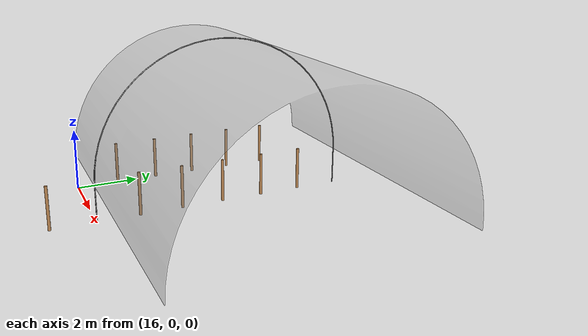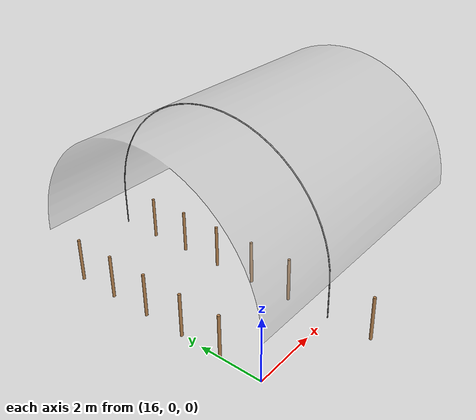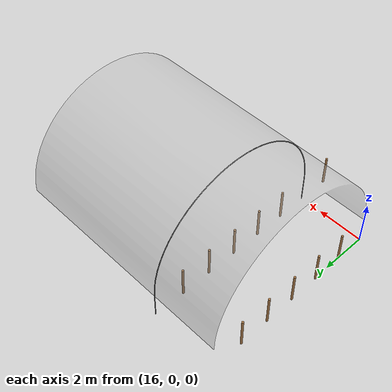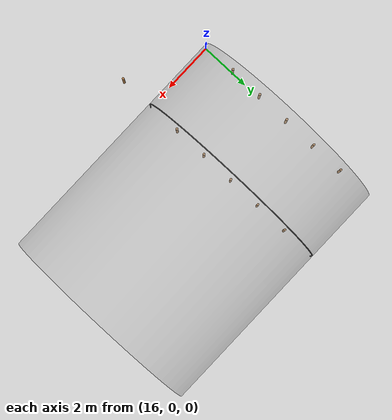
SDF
<sdf version="1.4">
 <world name="default">
  <model name="pole_24">
   <static>1</static>
   <pose>19.000 -1.350 0.691 0.0 0.0 0.0</pose>
   <link name="link">
    <collision name="collision">
     <geometry><cylinder><length>1.38235</length><radius>0.0456111</radius></cylinder></geometry>
    </collision>
    <visual name="visual">
     <geometry><cylinder><length>1.38235</length><radius>0.0456111</radius></cylinder></geometry>
     <material>
      <script><uri>file://media/materials/scripts/gazebo.material</uri><name>Gazebo/WoodFloor</name></script>
      <shader type="vertex"><normal_map>__default__</normal_map></shader>
      <emissive>0 0 0 1</emissive>
      <specular>0.01 0.01 0.01 1</specular>
      <ambient>0.9 0.9 0.9 1</ambient>
      <diffuse>0.09 0.09 0.09 1</diffuse>
     </material>
    </visual>
   </link>
  </model>
  <model name="pole_60">
   <static>1</static>
   <pose>16.000 1.350 0.691 0.0 0.0 0.0</pose>
   <link name="link">
    <collision name="collision">
     <geometry><cylinder><length>1.38235</length><radius>0.0456111</radius></cylinder></geometry>
    </collision>
    <visual name="visual">
     <geometry><cylinder><length>1.38235</length><radius>0.0456111</radius></cylinder></geometry>
     <material>
      <script><uri>file://media/materials/scripts/gazebo.material</uri><name>Gazebo/WoodFloor</name></script>
      <shader type="vertex"><normal_map>__default__</normal_map></shader>
      <emissive>0 0 0 1</emissive>
      <specular>0.01 0.01 0.01 1</specular>
      <ambient>0.9 0.9 0.9 1</ambient>
      <diffuse>0.09 0.09 0.09 1</diffuse>
     </material>
    </visual>
   </link>
  </model>
  <model name="pole_61">
   <static>1</static>
   <pose>16.000 2.700 0.691 0.0 0.0 0.0</pose>
   <link name="link">
    <collision name="collision">
     <geometry><cylinder><length>1.38235</length><radius>0.0456111</radius></cylinder></geometry>
    </collision>
    <visual name="visual">
     <geometry><cylinder><length>1.38235</length><radius>0.0456111</radius></cylinder></geometry>
     <material>
      <script><uri>file://media/materials/scripts/gazebo.material</uri><name>Gazebo/WoodFloor</name></script>
      <shader type="vertex"><normal_map>__default__</normal_map></shader>
      <emissive>0 0 0 1</emissive>
      <specular>0.01 0.01 0.01 1</specular>
      <ambient>0.9 0.9 0.9 1</ambient>
      <diffuse>0.09 0.09 0.09 1</diffuse>
     </material>
    </visual>
   </link>
  </model>
  <model name="pole_62">
   <static>1</static>
   <pose>16.000 4.050 0.691 0.0 0.0 0.0</pose>
   <link name="link">
    <collision name="collision">
     <geometry><cylinder><length>1.38235</length><radius>0.0456111</radius></cylinder></geometry>
    </collision>
    <visual name="visual">
     <geometry><cylinder><length>1.38235</length><radius>0.0456111</radius></cylinder></geometry>
     <material>
      <script><uri>file://media/materials/scripts/gazebo.material</uri><name>Gazebo/WoodFloor</name></script>
      <shader type="vertex"><normal_map>__default__</normal_map></shader>
      <emissive>0 0 0 1</emissive>
      <specular>0.01 0.01 0.01 1</specular>
      <ambient>0.9 0.9 0.9 1</ambient>
      <diffuse>0.09 0.09 0.09 1</diffuse>
     </material>
    </visual>
   </link>
  </model>
  <model name="pole_63">
   <static>1</static>
   <pose>16.000 5.400 0.691 0.0 0.0 0.0</pose>
   <link name="link">
    <collision name="collision">
     <geometry><cylinder><length>1.38235</length><radius>0.0456111</radius></cylinder></geometry>
    </collision>
    <visual name="visual">
     <geometry><cylinder><length>1.38235</length><radius>0.0456111</radius></cylinder></geometry>
     <material>
      <script><uri>file://media/materials/scripts/gazebo.material</uri><name>Gazebo/WoodFloor</name></script>
      <shader type="vertex"><normal_map>__default__</normal_map></shader>
      <emissive>0 0 0 1</emissive>
      <specular>0.01 0.01 0.01 1</specular>
      <ambient>0.9 0.9 0.9 1</ambient>
      <diffuse>0.09 0.09 0.09 1</diffuse>
     </material>
    </visual>
   </link>
  </model>
  <model name="pole_64">
   <static>1</static>
   <pose>16.000 6.750 0.691 0.0 0.0 0.0</pose>
   <link name="link">
    <collision name="collision">
     <geometry><cylinder><length>1.38235</length><radius>0.0456111</radius></cylinder></geometry>
    </collision>
    <visual name="visual">
     <geometry><cylinder><length>1.38235</length><radius>0.0456111</radius></cylinder></geometry>
     <material>
      <script><uri>file://media/materials/scripts/gazebo.material</uri><name>Gazebo/WoodFloor</name></script>
      <shader type="vertex"><normal_map>__default__</normal_map></shader>
      <emissive>0 0 0 1</emissive>
      <specular>0.01 0.01 0.01 1</specular>
      <ambient>0.9 0.9 0.9 1</ambient>
      <diffuse>0.09 0.09 0.09 1</diffuse>
     </material>
    </visual>
   </link>
  </model>
  <model name="pole_65">
   <static>1</static>
   <pose>19.000 1.350 0.691 0.0 0.0 0.0</pose>
   <link name="link">
    <collision name="collision">
     <geometry><cylinder><length>1.38235</length><radius>0.0456111</radius></cylinder></geometry>
    </collision>
    <visual name="visual">
     <geometry><cylinder><length>1.38235</length><radius>0.0456111</radius></cylinder></geometry>
     <material>
      <script><uri>file://media/materials/scripts/gazebo.material</uri><name>Gazebo/WoodFloor</name></script>
      <shader type="vertex"><normal_map>__default__</normal_map></shader>
      <emissive>0 0 0 1</emissive>
      <specular>0.01 0.01 0.01 1</specular>
      <ambient>0.9 0.9 0.9 1</ambient>
      <diffuse>0.09 0.09 0.09 1</diffuse>
     </material>
    </visual>
   </link>
  </model>
  <model name="pole_66">
   <static>1</static>
   <pose>19.000 2.700 0.691 0.0 0.0 0.0</pose>
   <link name="link">
    <collision name="collision">
     <geometry><cylinder><length>1.38235</length><radius>0.0456111</radius></cylinder></geometry>
    </collision>
    <visual name="visual">
     <geometry><cylinder><length>1.38235</length><radius>0.0456111</radius></cylinder></geometry>
     <material>
      <script><uri>file://media/materials/scripts/gazebo.material</uri><name>Gazebo/WoodFloor</name></script>
      <shader type="vertex"><normal_map>__default__</normal_map></shader>
      <emissive>0 0 0 1</emissive>
      <specular>0.01 0.01 0.01 1</specular>
      <ambient>0.9 0.9 0.9 1</ambient>
      <diffuse>0.09 0.09 0.09 1</diffuse>
     </material>
    </visual>
   </link>
  </model>
  <model name="pole_67">
   <static>1</static>
   <pose>19.000 4.050 0.691 0.0 0.0 0.0</pose>
   <link name="link">
    <collision name="collision">
     <geometry><cylinder><length>1.38235</length><radius>0.0456111</radius></cylinder></geometry>
    </collision>
    <visual name="visual">
     <geometry><cylinder><length>1.38235</length><radius>0.0456111</radius></cylinder></geometry>
     <material>
      <script><uri>file://media/materials/scripts/gazebo.material</uri><name>Gazebo/WoodFloor</name></script>
      <shader type="vertex"><normal_map>__default__</normal_map></shader>
      <emissive>0 0 0 1</emissive>
      <specular>0.01 0.01 0.01 1</specular>
      <ambient>0.9 0.9 0.9 1</ambient>
      <diffuse>0.09 0.09 0.09 1</diffuse>
     </material>
    </visual>
   </link>
  </model>
  <model name="pole_68">
   <static>1</static>
   <pose>19.000 5.400 0.691 0.0 0.0 0.0</pose>
   <link name="link">
    <collision name="collision">
     <geometry><cylinder><length>1.38235</length><radius>0.0456111</radius></cylinder></geometry>
    </collision>
    <visual name="visual">
     <geometry><cylinder><length>1.38235</length><radius>0.0456111</radius></cylinder></geometry>
     <material>
      <script><uri>file://media/materials/scripts/gazebo.material</uri><name>Gazebo/WoodFloor</name></script>
      <shader type="vertex"><normal_map>__default__</normal_map></shader>
      <emissive>0 0 0 1</emissive>
      <specular>0.01 0.01 0.01 1</specular>
      <ambient>0.9 0.9 0.9 1</ambient>
      <diffuse>0.09 0.09 0.09 1</diffuse>
     </material>
    </visual>
   </link>
  </model>
  <model name="pole_69">
   <static>1</static>
   <pose>19.000 6.750 0.691 0.0 0.0 0.0</pose>
   <link name="link">
    <collision name="collision">
     <geometry><cylinder><length>1.38235</length><radius>0.0456111</radius></cylinder></geometry>
    </collision>
    <visual name="visual">
     <geometry><cylinder><length>1.38235</length><radius>0.0456111</radius></cylinder></geometry>
     <material>
      <script><uri>file://media/materials/scripts/gazebo.material</uri><name>Gazebo/WoodFloor</name></script>
      <shader type="vertex"><normal_map>__default__</normal_map></shader>
      <emissive>0 0 0 1</emissive>
      <specular>0.01 0.01 0.01 1</specular>
      <ambient>0.9 0.9 0.9 1</ambient>
      <diffuse>0.09 0.09 0.09 1</diffuse>
     </material>
    </visual>
   </link>
  </model>
  <model name="dummy_arch_10">
   <static>1</static>
   <pose>18.999 0.000 0.0 1.5707 0.0 1.5707</pose>
   <link name="link">
    <collision name="collision">
     <geometry><mesh><uri>model://dummy_arch/dummy_arch.stl</uri></mesh></geometry>
    </collision>
    <visual name="visual">
     <geometry><mesh><uri>model://dummy_arch/dummy_arch.stl</uri></mesh></geometry>
     <material>
      <script><uri>file://media/materials/scripts/gazebo.material</uri><name>Gazebo/Grey</name></script>
     </material>
    </visual>
   </link>
  </model>
  <model name="canopy10m_3">
   <static>1</static>
   <pose>16.000 4.067 0.0 1.5707 0.0 1.5707</pose>
   <link name="link">
    <collision name="collision">
     <geometry><mesh><uri>model://canopy10m/Canopy10m.stl</uri></mesh></geometry>
    </collision>
    <visual name="visual">
     <geometry><mesh><uri>model://canopy10m/Canopy10m.stl</uri></mesh></geometry>
     <transparency>0.65</transparency>
    </visual>
   </link>
  </model>
  <include><uri>model://sun</uri></include>
 </world>
</sdf>
